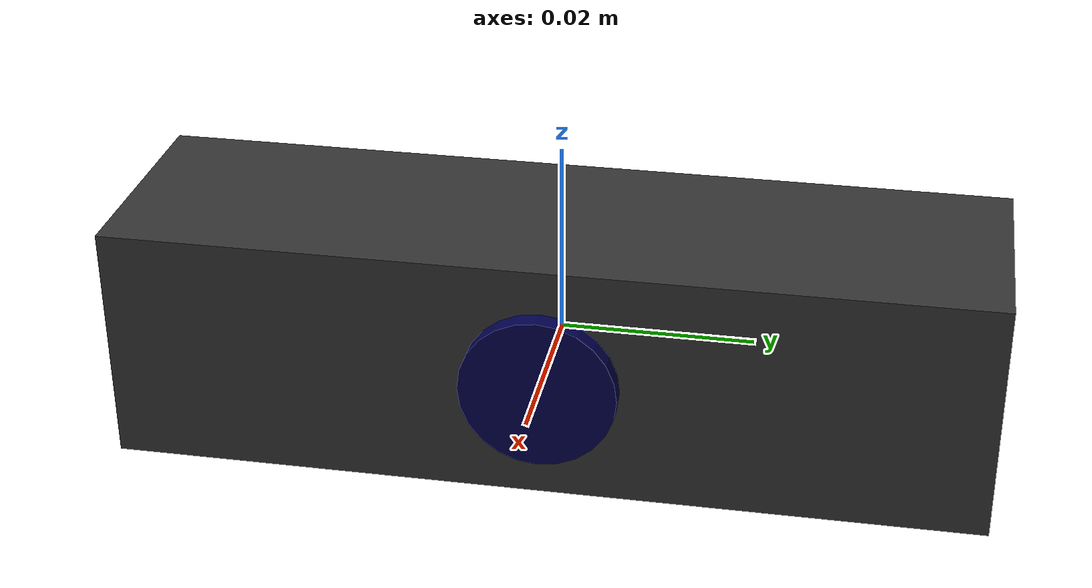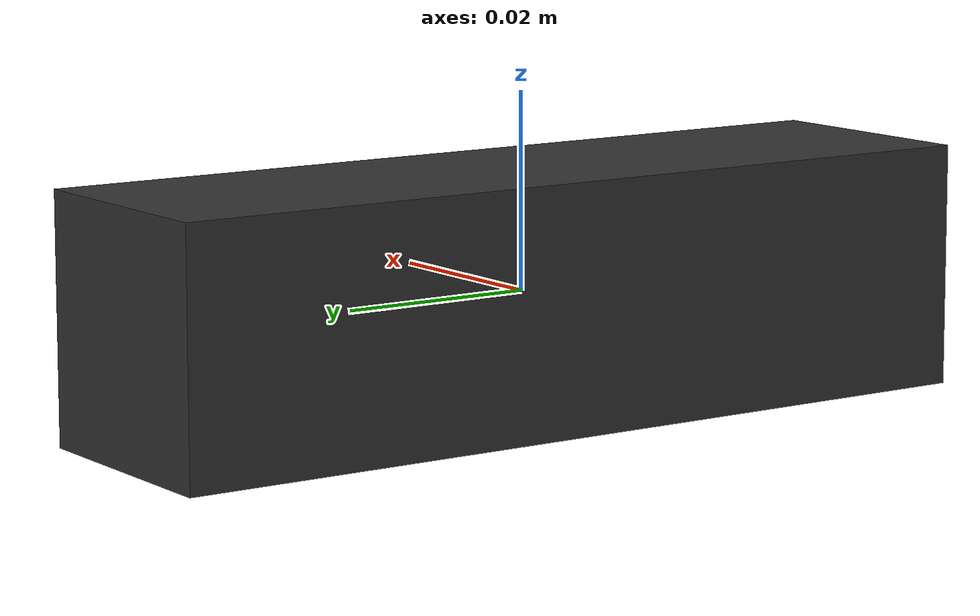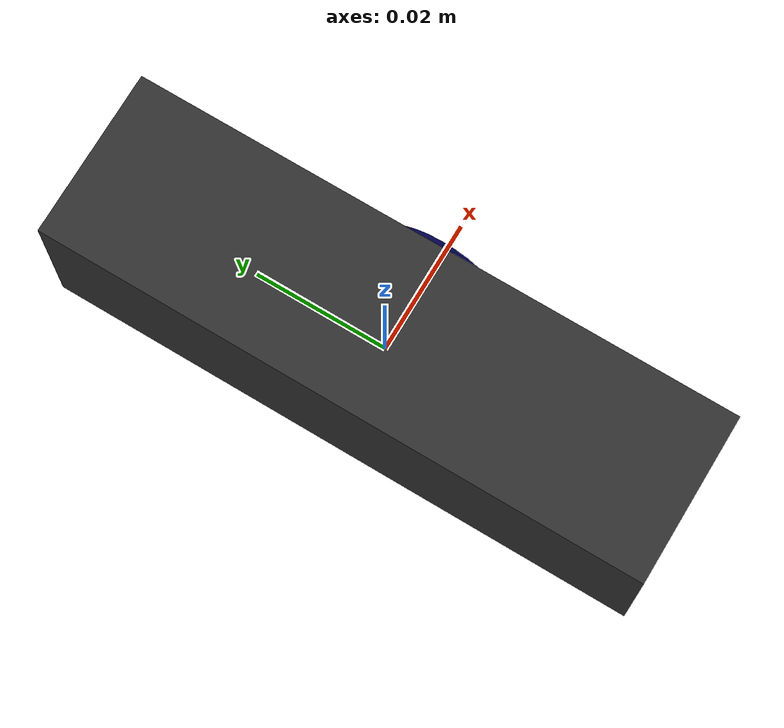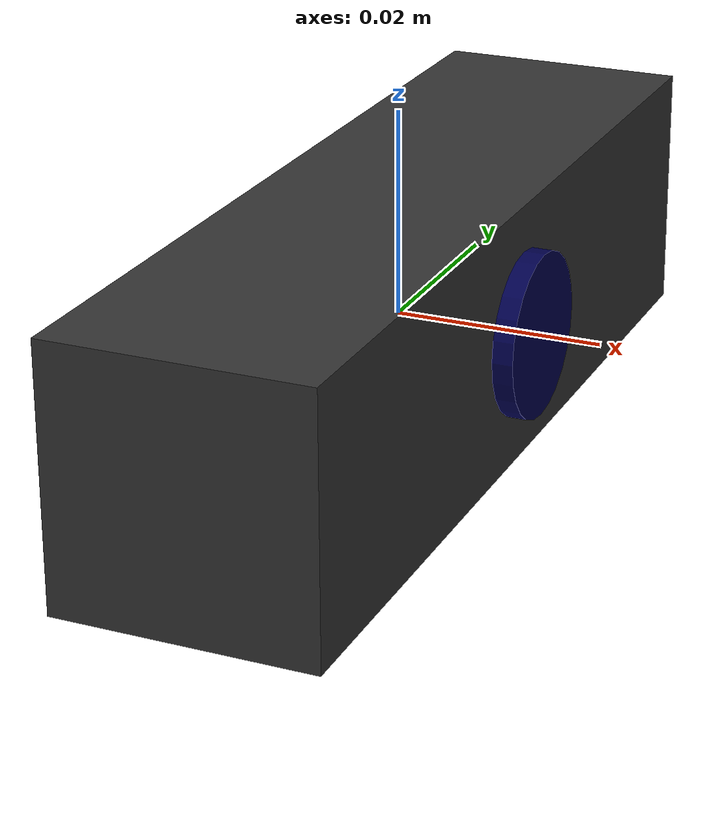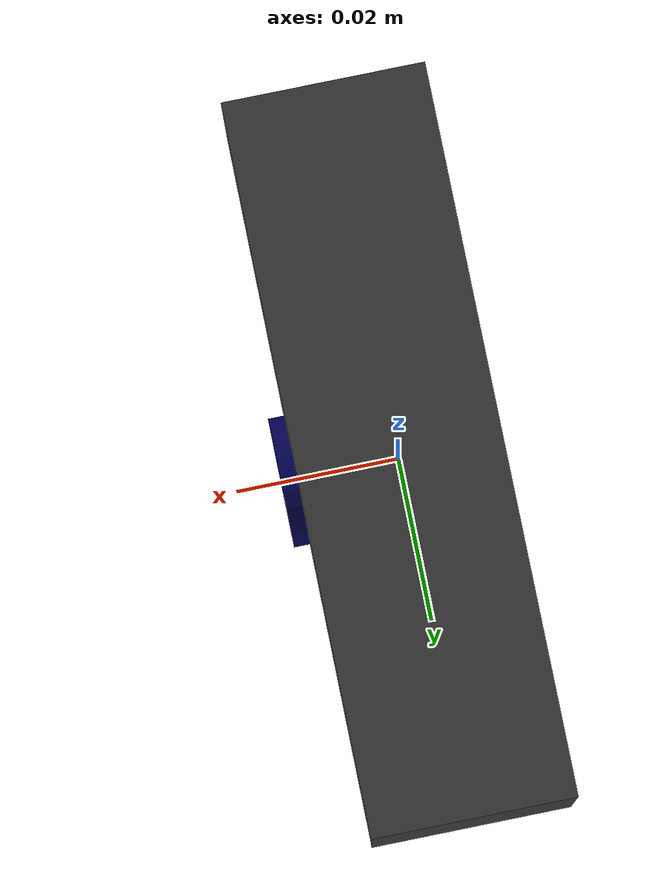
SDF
<?xml version="1.0"?>
<sdf version="1.9">
  <model name="rgbd_camera_model">
    <static>false</static>

    <link name="camera_link">
      <!-- Visual representation of camera -->
      <visual name="camera_visual">
        <geometry>
          <box>
            <size>0.025 0.090 0.025</size>
          </box>
        </geometry>
        <material>
          <ambient>0.1 0.1 0.1 1</ambient>
          <diffuse>0.2 0.2 0.2 1</diffuse>
        </material>
      </visual>

      <!-- Camera lens detail -->
      <visual name="lens_visual">
        <pose>0.012 0 0 0 1.5708 0</pose>
        <geometry>
          <cylinder>
            <radius>0.008</radius>
            <length>0.005</length>
          </cylinder>
        </geometry>
        <material>
          <ambient>0.0 0.0 0.3 1</ambient>
        </material>
      </visual>

      <collision name="camera_collision">
        <geometry>
          <box>
            <size>0.025 0.090 0.025</size>
          </box>
        </geometry>
      </collision>

      <inertial>
        <mass>0.072</mass>
        <inertia>
          <ixx>0.00001</ixx>
          <iyy>0.00005</iyy>
          <izz>0.00005</izz>
        </inertia>
      </inertial>

      <!-- RGB-D Camera Sensor -->
      <sensor name="rgbd_camera" type="rgbd_camera">
        <pose>0 0 0 0 0 0</pose>

        <!-- Update rate (Hz) - RealSense D435 supports 30/60/90 fps -->
        <update_rate>30</update_rate>

        <!-- Topics for different data streams -->
        <topic>/humanoid/camera</topic>

        <always_on>true</always_on>
        <visualize>true</visualize>

        <camera>
          <!-- Image resolution - 640x480 is common for processing -->
          <image>
            <width>640</width>
            <height>480</height>
            <format>R8G8B8</format>
          </image>

          <!-- Horizontal field of view (radians) -->
          <!-- RealSense D435: 87° depth, 69.4° RGB -->
          <horizontal_fov>1.20428</horizontal_fov>

          <!-- Clipping planes -->
          <clip>
            <!-- D435 min range: ~0.1m for depth -->
            <near>0.1</near>
            <!-- D435 max range: ~10m (accuracy degrades beyond) -->
            <far>10.0</far>
          </clip>

          <!-- Depth camera specific -->
          <depth_camera>
            <!-- Output format for depth -->
            <output>depths</output>
            <!-- Clip distances for depth specifically -->
            <clip>
              <near>0.1</near>
              <far>10.0</far>
            </clip>
          </depth_camera>

          <!-- Lens distortion (minimal for RealSense) -->
          <distortion>
            <k1>0.0</k1>
            <k2>0.0</k2>
            <k3>0.0</k3>
            <p1>0.0</p1>
            <p2>0.0</p2>
            <center>0.5 0.5</center>
          </distortion>

          <!-- Noise model for RGB -->
          <noise>
            <type>gaussian</type>
            <mean>0.0</mean>
            <stddev>0.007</stddev>
          </noise>
        </camera>
      </sensor>
    </link>
  </model>
</sdf>
